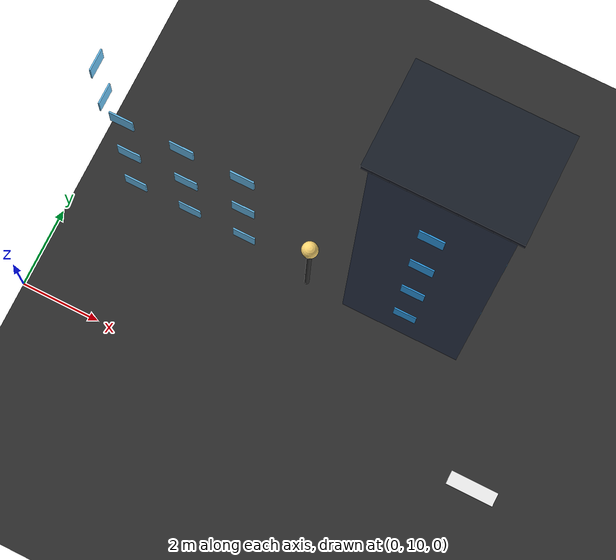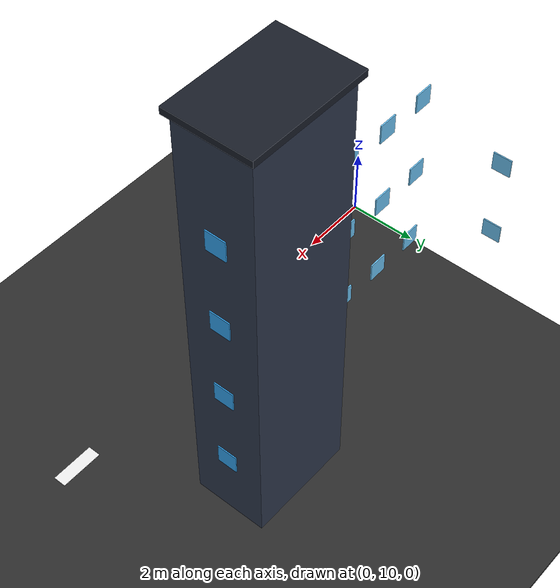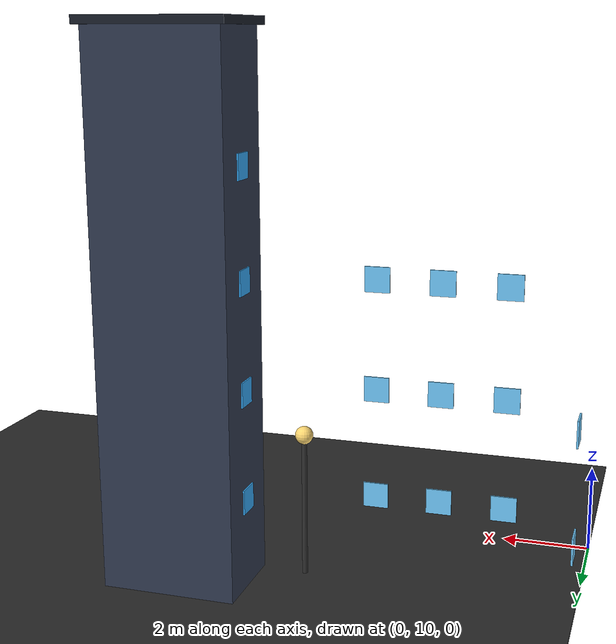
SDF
<sdf version="1.10">
 <world name="city_uav_demo">
  <model name="ground_plane">
   <static>true</static>
   <pose>20.0000 20.0000 -0.0500 0 0 0.0000</pose>
   <link name="link">
    <collision name="collision"><geometry><box><size>40.0000 40.0000 0.1000</size></box></geometry></collision>
    <visual name="visual">
     <geometry><box><size>40.0000 40.0000 0.1000</size></box></geometry>
     <material><ambient>0.18 0.18 0.18 1.0</ambient><diffuse>0.18 0.18 0.18 1.0</diffuse></material>
    </visual>
   </link>
  </model>
  <model name="crosswalk_0_v_2">
   <static>true</static>
   <pose>11.6500 10.4000 0.1200 0 0 0.0000</pose>
   <link name="link">
    <visual name="visual">
     <geometry><box><size>1.2000 0.3500 0.0250</size></box></geometry>
     <material><ambient>0.95 0.95 0.95 1.0</ambient><diffuse>0.95 0.95 0.95 1.0</diffuse></material>
    </visual>
   </link>
  </model>
  <model name="building_8_window_front_0">
   <static>true</static>
   <pose>1.6000 12.9880 2.0000 0 0 0.0000</pose>
   <link name="link">
    <visual name="visual">
     <geometry><box><size>0.5500 0.0350 0.5500</size></box></geometry>
     <material><ambient>0.42 0.76 0.95 1.0</ambient><diffuse>0.42 0.76 0.95 1.0</diffuse></material>
    </visual>
   </link>
  </model>
  <model name="building_8_window_front_1">
   <static>true</static>
   <pose>3.0000 12.9880 2.0000 0 0 0.0000</pose>
   <link name="link">
    <visual name="visual">
     <geometry><box><size>0.5500 0.0350 0.5500</size></box></geometry>
     <material><ambient>0.42 0.76 0.95 1.0</ambient><diffuse>0.42 0.76 0.95 1.0</diffuse></material>
    </visual>
   </link>
  </model>
  <model name="building_8_window_front_2">
   <static>true</static>
   <pose>4.4000 12.9880 2.0000 0 0 0.0000</pose>
   <link name="link">
    <visual name="visual">
     <geometry><box><size>0.5500 0.0350 0.5500</size></box></geometry>
     <material><ambient>0.42 0.76 0.95 1.0</ambient><diffuse>0.42 0.76 0.95 1.0</diffuse></material>
    </visual>
   </link>
  </model>
  <model name="building_8_window_front_3">
   <static>true</static>
   <pose>1.6000 12.9880 4.4000 0 0 0.0000</pose>
   <link name="link">
    <visual name="visual">
     <geometry><box><size>0.5500 0.0350 0.5500</size></box></geometry>
     <material><ambient>0.42 0.76 0.95 1.0</ambient><diffuse>0.42 0.76 0.95 1.0</diffuse></material>
    </visual>
   </link>
  </model>
  <model name="building_8_window_front_4">
   <static>true</static>
   <pose>3.0000 12.9880 4.4000 0 0 0.0000</pose>
   <link name="link">
    <visual name="visual">
     <geometry><box><size>0.5500 0.0350 0.5500</size></box></geometry>
     <material><ambient>0.42 0.76 0.95 1.0</ambient><diffuse>0.42 0.76 0.95 1.0</diffuse></material>
    </visual>
   </link>
  </model>
  <model name="building_8_window_front_5">
   <static>true</static>
   <pose>4.4000 12.9880 4.4000 0 0 0.0000</pose>
   <link name="link">
    <visual name="visual">
     <geometry><box><size>0.5500 0.0350 0.5500</size></box></geometry>
     <material><ambient>0.42 0.76 0.95 1.0</ambient><diffuse>0.42 0.76 0.95 1.0</diffuse></material>
    </visual>
   </link>
  </model>
  <model name="building_8_window_front_6">
   <static>true</static>
   <pose>1.6000 12.9880 6.8000 0 0 0.0000</pose>
   <link name="link">
    <visual name="visual">
     <geometry><box><size>0.5500 0.0350 0.5500</size></box></geometry>
     <material><ambient>0.42 0.76 0.95 1.0</ambient><diffuse>0.42 0.76 0.95 1.0</diffuse></material>
    </visual>
   </link>
  </model>
  <model name="building_8_window_front_7">
   <static>true</static>
   <pose>3.0000 12.9880 6.8000 0 0 0.0000</pose>
   <link name="link">
    <visual name="visual">
     <geometry><box><size>0.5500 0.0350 0.5500</size></box></geometry>
     <material><ambient>0.42 0.76 0.95 1.0</ambient><diffuse>0.42 0.76 0.95 1.0</diffuse></material>
    </visual>
   </link>
  </model>
  <model name="building_8_window_front_8">
   <static>true</static>
   <pose>4.4000 12.9880 6.8000 0 0 0.0000</pose>
   <link name="link">
    <visual name="visual">
     <geometry><box><size>0.5500 0.0350 0.5500</size></box></geometry>
     <material><ambient>0.42 0.76 0.95 1.0</ambient><diffuse>0.42 0.76 0.95 1.0</diffuse></material>
    </visual>
   </link>
  </model>
  <model name="building_8_window_left_0">
   <static>true</static>
   <pose>-0.0120 14.5000 2.0000 0 0 0.0000</pose>
   <link name="link">
    <visual name="visual">
     <geometry><box><size>0.0350 0.5500 0.5500</size></box></geometry>
     <material><ambient>0.42 0.76 0.95 1.0</ambient><diffuse>0.42 0.76 0.95 1.0</diffuse></material>
    </visual>
   </link>
  </model>
  <model name="building_8_window_left_1">
   <static>true</static>
   <pose>-0.0120 14.5000 4.4000 0 0 0.0000</pose>
   <link name="link">
    <visual name="visual">
     <geometry><box><size>0.0350 0.5500 0.5500</size></box></geometry>
     <material><ambient>0.42 0.76 0.95 1.0</ambient><diffuse>0.42 0.76 0.95 1.0</diffuse></material>
    </visual>
   </link>
  </model>
  <model name="building_20_body">
   <static>true</static>
   <pose>8.5000 14.0000 6.0000 0 0 0.0000</pose>
   <link name="link">
    <collision name="collision"><geometry><box><size>3.0000 2.0000 12.0000</size></box></geometry></collision>
    <visual name="visual">
     <geometry><box><size>3.0000 2.0000 12.0000</size></box></geometry>
     <material><ambient>0.18 0.22 0.30 1.0</ambient><diffuse>0.18 0.22 0.30 1.0</diffuse></material>
    </visual>
   </link>
  </model>
  <model name="building_20_roof">
   <static>true</static>
   <pose>8.5000 14.0000 12.0900 0 0 0.0000</pose>
   <link name="link">
    <collision name="collision"><geometry><box><size>3.2500 2.2500 0.1800</size></box></geometry></collision>
    <visual name="visual">
     <geometry><box><size>3.2500 2.2500 0.1800</size></box></geometry>
     <material><ambient>0.10 0.12 0.16 1.0</ambient><diffuse>0.10 0.12 0.16 1.0</diffuse></material>
    </visual>
   </link>
  </model>
  <model name="building_20_window_front_0">
   <static>true</static>
   <pose>8.5000 12.9880 2.0000 0 0 0.0000</pose>
   <link name="link">
    <visual name="visual">
     <geometry><box><size>0.5500 0.0350 0.5500</size></box></geometry>
     <material><ambient>0.20 0.65 0.95 1.0</ambient><diffuse>0.20 0.65 0.95 1.0</diffuse></material>
    </visual>
   </link>
  </model>
  <model name="building_20_window_front_1">
   <static>true</static>
   <pose>8.5000 12.9880 4.4000 0 0 0.0000</pose>
   <link name="link">
    <visual name="visual">
     <geometry><box><size>0.5500 0.0350 0.5500</size></box></geometry>
     <material><ambient>0.20 0.65 0.95 1.0</ambient><diffuse>0.20 0.65 0.95 1.0</diffuse></material>
    </visual>
   </link>
  </model>
  <model name="building_20_window_front_2">
   <static>true</static>
   <pose>8.5000 12.9880 6.8000 0 0 0.0000</pose>
   <link name="link">
    <visual name="visual">
     <geometry><box><size>0.5500 0.0350 0.5500</size></box></geometry>
     <material><ambient>0.20 0.65 0.95 1.0</ambient><diffuse>0.20 0.65 0.95 1.0</diffuse></material>
    </visual>
   </link>
  </model>
  <model name="building_20_window_front_3">
   <static>true</static>
   <pose>8.5000 12.9880 9.2000 0 0 0.0000</pose>
   <link name="link">
    <visual name="visual">
     <geometry><box><size>0.5500 0.0350 0.5500</size></box></geometry>
     <material><ambient>0.20 0.65 0.95 1.0</ambient><diffuse>0.20 0.65 0.95 1.0</diffuse></material>
    </visual>
   </link>
  </model>
  <model name="building_20_window_left_0">
   <static>true</static>
   <pose>6.9880 14.0000 2.0000 0 0 0.0000</pose>
   <link name="link">
    <visual name="visual">
     <geometry><box><size>0.0350 0.5500 0.5500</size></box></geometry>
     <material><ambient>0.20 0.65 0.95 1.0</ambient><diffuse>0.20 0.65 0.95 1.0</diffuse></material>
    </visual>
   </link>
  </model>
  <model name="building_20_window_left_1">
   <static>true</static>
   <pose>6.9880 14.0000 4.4000 0 0 0.0000</pose>
   <link name="link">
    <visual name="visual">
     <geometry><box><size>0.0350 0.5500 0.5500</size></box></geometry>
     <material><ambient>0.20 0.65 0.95 1.0</ambient><diffuse>0.20 0.65 0.95 1.0</diffuse></material>
    </visual>
   </link>
  </model>
  <model name="building_20_window_left_2">
   <static>true</static>
   <pose>6.9880 14.0000 6.8000 0 0 0.0000</pose>
   <link name="link">
    <visual name="visual">
     <geometry><box><size>0.0350 0.5500 0.5500</size></box></geometry>
     <material><ambient>0.20 0.65 0.95 1.0</ambient><diffuse>0.20 0.65 0.95 1.0</diffuse></material>
    </visual>
   </link>
  </model>
  <model name="building_20_window_left_3">
   <static>true</static>
   <pose>6.9880 14.0000 9.2000 0 0 0.0000</pose>
   <link name="link">
    <visual name="visual">
     <geometry><box><size>0.0350 0.5500 0.5500</size></box></geometry>
     <material><ambient>0.20 0.65 0.95 1.0</ambient><diffuse>0.20 0.65 0.95 1.0</diffuse></material>
    </visual>
   </link>
  </model>
  <model name="building_20_window_right_0">
   <static>true</static>
   <pose>10.0120 14.0000 2.0000 0 0 0.0000</pose>
   <link name="link">
    <visual name="visual">
     <geometry><box><size>0.0350 0.5500 0.5500</size></box></geometry>
     <material><ambient>0.20 0.65 0.95 1.0</ambient><diffuse>0.20 0.65 0.95 1.0</diffuse></material>
    </visual>
   </link>
  </model>
  <model name="building_20_window_right_1">
   <static>true</static>
   <pose>10.0120 14.0000 4.4000 0 0 0.0000</pose>
   <link name="link">
    <visual name="visual">
     <geometry><box><size>0.0350 0.5500 0.5500</size></box></geometry>
     <material><ambient>0.20 0.65 0.95 1.0</ambient><diffuse>0.20 0.65 0.95 1.0</diffuse></material>
    </visual>
   </link>
  </model>
  <model name="building_20_window_right_2">
   <static>true</static>
   <pose>10.0120 14.0000 6.8000 0 0 0.0000</pose>
   <link name="link">
    <visual name="visual">
     <geometry><box><size>0.0350 0.5500 0.5500</size></box></geometry>
     <material><ambient>0.20 0.65 0.95 1.0</ambient><diffuse>0.20 0.65 0.95 1.0</diffuse></material>
    </visual>
   </link>
  </model>
  <model name="building_20_window_right_3">
   <static>true</static>
   <pose>10.0120 14.0000 9.2000 0 0 0.0000</pose>
   <link name="link">
    <visual name="visual">
     <geometry><box><size>0.0350 0.5500 0.5500</size></box></geometry>
     <material><ambient>0.20 0.65 0.95 1.0</ambient><diffuse>0.20 0.65 0.95 1.0</diffuse></material>
    </visual>
   </link>
  </model>
  <model name="streetlight_0_pole">
   <static>true</static>
   <pose>6.0000 13.1000 1.6000 0.0000 0.0000 0.0000</pose>
   <link name="link">
    <visual name="visual">
     <geometry><cylinder><radius>0.0600</radius><length>3.2000</length></cylinder></geometry>
     <material><ambient>0.18 0.18 0.18 1.0</ambient><diffuse>0.18 0.18 0.18 1.0</diffuse></material>
    </visual>
   </link>
  </model>
  <model name="streetlight_0_lamp">
   <static>true</static>
   <pose>6.0000 13.1000 3.2500 0 0 0</pose>
   <link name="link">
    <visual name="visual">
     <geometry><sphere><radius>0.2000</radius></sphere></geometry>
     <material><ambient>1.0 0.85 0.45 1.0</ambient><diffuse>1.0 0.85 0.45 1.0</diffuse></material>
    </visual>
   </link>
  </model>
 </world>
</sdf>
